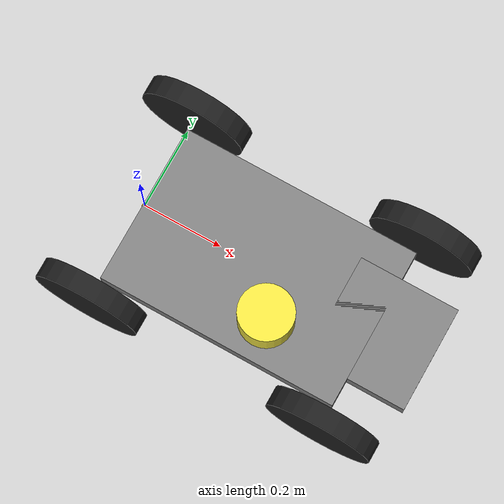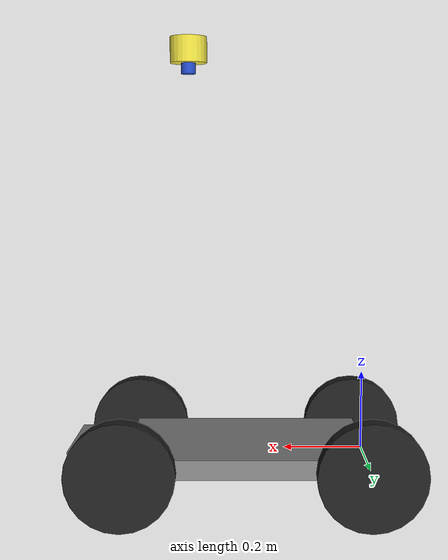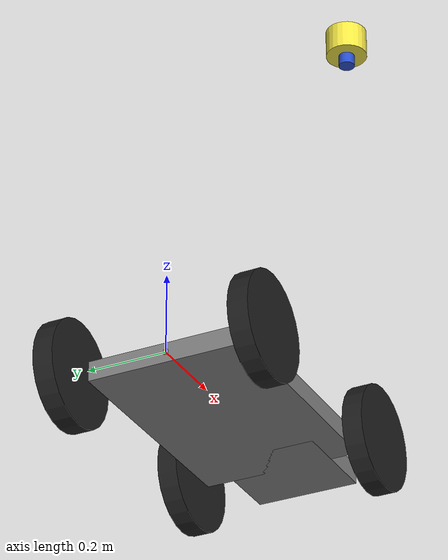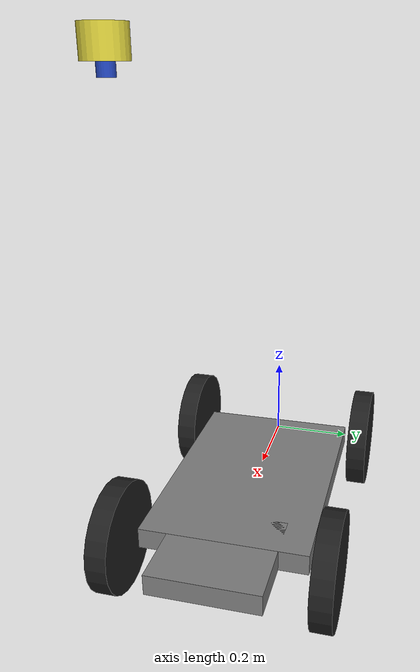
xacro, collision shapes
<?xml version="1.0"?>
<robot name="whill_modelc" xmlns:xacro="http://www.ros.org/wiki/xacro">
  <gazebo>
    <plugin name="gazebo_ros_control" filename="libgazebo_ros_control.so">
      <robotNamespace>/whill_modelc</robotNamespace>
    </plugin>
  </gazebo>

  <!-- Include Base Body -->
  <xacro:include filename="$(find rtw_gazebo)/xacro/whill_modelc/base/base.xacro"/>
  <!-- Include Sensors -->
  <xacro:include filename="$(find rtw_gazebo)/xacro/whill_modelc/sensor/sensor.xacro"/>
</robot>

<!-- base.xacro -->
<robot xmlns:xacro="http://www.ros.org/wiki/xacro" name="whill_modelc" >

    <link name="base_link"/>

    <link name="base_floor">
        <visual>
            <geometry>
                <box size="0.600 0.400 0.050"/>
            </geometry>
            <material name="grey">
                <color rgba="0.5 0.5 0.5 1.0"/>
            </material>
        </visual>
        <collision>
            <geometry>
                <box size="0.600 0.400 0.050"/>
            </geometry>
        </collision>
        <inertial>
            <origin xyz="0 0 0" rpy="0 0 0" />
            <mass value="40" />
            <inertia ixx="1.0"  ixy="0.0"   ixz="0.0"
                                iyy="1.0"   iyz="0.0"
                                            izz="1.0" />
        </inertial>
    </link>

    <joint name="base_body_joint" type="fixed">
        <parent link="base_link" />
        <child link="base_floor" />
        <origin xyz="0.3 0 0.0" rpy="0 0 0"/>
    </joint>

    <link name="footrest_link">
        <collision>
            <geometry>
                <box size="0.250 0.260 0.050"/>
            </geometry>
        </collision>
        <visual>
            <geometry>
                <box size="0.250 0.260 0.050"/>
            </geometry>
            <material name="grey">
                <color rgba="0.5 0.5 0.5 1.0"/>
            </material>
        </visual>
        <inertial>
            <origin xyz="0 0 0" rpy="0 0 0" />
            <mass value="1" />
            <inertia ixx="1.0"  ixy="0.0"   ixz="0.0"
                                iyy="1.0"   iyz="0.0"
                                            izz="1.0" />
        </inertial>
    </link>

    <joint name="footrest_joint" type="fixed">
        <parent link="base_floor" />
        <child link="footrest_link" />
        <origin xyz="0.320 0 0" rpy="0 0 0"/>
    </joint>

    <link name="left_wheel_link">
        <visual>
            <geometry>
                <cylinder length="0.05" radius="0.1325"/>
            </geometry>
            <origin xyz="0 0 0" rpy="0 0 0" />
            <material name="black" />
        </visual>
        <collision>
            <geometry>
                <cylinder length="0.05" radius="0.1325"/>
            </geometry>
        </collision>
        <inertial>
            <origin xyz="0 0 0"/>
            <mass value="0.500"/>
            <inertia ixx="0.0013541667" ixy="0" ixz="0" iyy="0.0013541667" iyz="0" izz="0.0025"/>
        </inertial>
    </link>

    <joint name="leftWheel" type="continuous">
        <parent link="base_floor" />
        <child link="left_wheel_link" />
        <origin xyz="-0.3 0.245 0" rpy="${radians(-90)} 0 0" />
        <axis xyz="0 0 1" />
    </joint>

    <link name="right_wheel_link">
        <collision>
            <origin xyz="0 0 0" rpy="0 0 0" />
            <geometry>
                <cylinder length="0.05" radius="0.1325"/>
            </geometry>
        </collision>
        <visual>
            <origin xyz="0 0 0" rpy="0 0 0" />
            <geometry>
                <cylinder length="0.05" radius="0.1325"/>
            </geometry>
            <material name="black" />
        </visual>
        <inertial>
            <origin xyz="0 0 0"/>
            <mass value="0.500"/>
            <inertia ixx="0.0013541667" ixy="0" ixz="0" iyy="0.0013541667" iyz="0" izz="0.0025"/>
        </inertial>
    </link>

    <joint name="rightWheel" type="continuous">
        <parent link="base_floor" />
        <child link="right_wheel_link" />
        <origin xyz="-0.3 -0.245 0" rpy="${radians(-90)} 0 0" />
        <axis xyz="0 0 1" />
    </joint>

    <link name="frontwheel_left">
        <collision>
            <geometry>
                <cylinder length="0.05" radius="0.1325"/>
            </geometry>
        </collision>
        <visual>
            <geometry>
                <cylinder length="0.05" radius="0.1325"/>
            </geometry>
            <material name="black" />
        </visual>
        <inertial>
            <origin xyz="0 0 0" rpy="0 0 0" />
            <mass value="1.0" />
            <inertia ixx="1.0"  ixy="0.0"   ixz="0.0"
                                iyy="1.0"   iyz="0.0"
                                            izz="1.0" />
        </inertial>
    </link>

    <joint name="frontwheel_left_joint" type="fixed">
        <parent link="base_floor" />
        <child link="frontwheel_left" />
        <origin xyz="0.3 0.245 0" rpy="${radians(-90)} 0 0" />
        <axis xyz="0 0 1" />
    </joint>

    <link name="frontwheel_right">
        <collision>
            <geometry>
                <cylinder length="0.05" radius="0.1325"/>
            </geometry>
        </collision>
        <visual>
            <geometry>
                <cylinder length="0.05" radius="0.1325"/>
            </geometry>
            <material name="black" />
        </visual>
        <inertial>
            <origin xyz="0 0 0" rpy="0 0 0" />
            <mass value="1.0" />
            <inertia ixx="1.0"  ixy="0.0"   ixz="0.0"
                                iyy="1.0"   iyz="0.0"
                                            izz="1.0" />
        </inertial>
    </link>

    <joint name="frontwheel_right_joint" type="fixed">
        <parent link="base_floor" />
        <child link="frontwheel_right"/>
        <origin xyz="0.3 -0.245 0" rpy="${radians(-90)} 0 0" />
        <axis xyz="0 0 -1" />
    </joint>

    <!-- ===============  Transmission =============== -->
    <transmission name="right_wheel_trans">
        <type>transmission_interface/SimpleTransmission</type>
        <joint name="rightWheel">
            <hardwareInterface>hardware_interface/VelocityJointInterface</hardwareInterface>
        </joint>
        <actuator name="right_wheel_motor">
            <hardwareInterface>hardware_interface/VelocityJointInterface</hardwareInterface>
            <mechanicalReduction>30</mechanicalReduction>
        </actuator>
    </transmission>

    <transmission name="left_wheel_trans">
        <type>transmission_interface/SimpleTransmission</type>
        <joint name="leftWheel">
            <hardwareInterface>hardware_interface/VelocityJointInterface</hardwareInterface>
        </joint>
        <actuator name="left_wheel_motor">
            <hardwareInterface>hardware_interface/VelocityJointInterface</hardwareInterface>
            <mechanicalReduction>30</mechanicalReduction>
        </actuator>
    </transmission>

    <!-- For Gazebo -->
    <gazebo reference="base_floor">
        <selfCollide>true</selfCollide>
        <mu1 value="0.05" />
        <mu2 value="0.05" />
    </gazebo>

    <gazebo reference="sensor_arm_link">
        <selfCollide>true</selfCollide>
        <mu1 value="0.05" />
        <mu2 value="0.05" />
    </gazebo>

    <gazebo reference="rearwheel_right">
        <selfCollide>true</selfCollide>
        <mu1 value="1.0" />
        <mu2 value="1.0" />
    </gazebo>

    <gazebo reference="rearwheel_left">
        <selfCollide>true</selfCollide>
        <mu1 value="1.0" />
        <mu2 value="1.0" />
    </gazebo>

    <gazebo reference="frontwheel_right">
        <selfCollide>true</selfCollide>
        <mu1 value="0.0" />
        <mu2 value="0.0" />
    </gazebo>

    <gazebo reference="frontwheel_left">
        <selfCollide>true</selfCollide>
        <mu1 value="0.0" />
        <mu2 value="0.0" />
    </gazebo>

</robot>

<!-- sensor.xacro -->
<robot name="whill_modelc" xmlns:xacro="http://www.ros.org/wiki/xacro">

  <!-- Include sensor macros -->
  <xacro:include filename="$(find rtw_gazebo)/xacro/whill_modelc/sensor/camera/camera.xacro" />
  <xacro:include filename="$(find rtw_gazebo)/xacro/whill_modelc/sensor/gps/gps.xacro" />
  <xacro:include filename="$(find rtw_gazebo)/xacro/whill_modelc/sensor/imu/imu.xacro" />
  <xacro:include filename="$(find rtw_gazebo)/xacro/whill_modelc/sensor/2d_lidar/2d_lidar.xacro" />
  <xacro:include filename="$(find rtw_gazebo)/xacro/whill_modelc/sensor/3d_lidar/3d_lidar.xacro" />

  <!-- Enable Flag -->
  <xacro:arg name="camera_enabled" default="true" />
  <xacro:arg name="gps_enabled" default="true" />
  <xacro:arg name="imu_enabled" default="true" />
  <xacro:arg name="2dlidar_enabled" default="true" />
  <xacro:arg name="3dlidar_enabled" default="true" />

  <!-- ADD SENSORS -->
  <!-- Camera -->
  <xacro:if value="$(arg camera_enabled)">
    <xacro:camera_macro prefix="camera" parent="base_link" xyz="0.48 0.23 0.82"/>
  </xacro:if>
  <!-- GPS -->
  <xacro:if value="$(arg gps_enabled)">
    <xacro:gps_macro prefix="gps" parent="base_link" xyz="0 0 0"/>
  </xacro:if>
  <!-- IMU -->
  <xacro:if value="$(arg imu_enabled)">
    <xacro:imu_macro prefix="imu" parent="base_link" xyz="0.02 0 0.05" rpy="0 0.85521133347 3.14159265359"/>
  </xacro:if>
  <!-- 2D LIDAR -->
  <xacro:if value="$(arg 2dlidar_enabled)">
    <xacro:lidar_2d_macro prefix="lidar" parent="base_link" xyz="0.46 -0.26 1.02"/>
  </xacro:if>
  <!-- 3D LIDAR -->
  <xacro:if value="$(arg 3dlidar_enabled)">
    <xacro:velodyne_vlp16 parent="base_link" xyz="0.46 -0.26 1.02"/>
  </xacro:if>
</robot>

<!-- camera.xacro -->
<robot xmlns:xacro="http://www.ros.org/wiki/xacro">
  <xacro:macro name="camera_macro" params="parent prefix xyz">
    <joint name="${prefix}_joint" type="fixed">
      <parent link="${parent}"/>
      <child  link="${prefix}_link"/>
      <origin xyz="${xyz}" rpy="${radians(-90)} 0 ${radians(-90)}"/>
    </joint>
    <link name="${prefix}_link"/>
    <gazebo reference="${prefix}_link">
      <sensor type="camera" name="${prefix}">
        <update_rate>10.0</update_rate>
        <camera name="${prefix}">
          <pose>0 0 0 0 ${radians(-90)} ${radians(90)}</pose>
          <horizontal_fov>1.3962634</horizontal_fov>
          <image>
            <width>800</width>
            <height>600</height>
            <format>R8G8B8</format>
          </image>
          <clip>
            <near>0.02</near>
            <far>300</far>
          </clip>
          <noise>
            <type>gaussian</type>
            <mean>0.0</mean>
            <stddev>0.007</stddev>
          </noise>
        </camera>
        <plugin name="camera_controller" filename="libgazebo_ros_camera.so">
          <alwaysOn>true</alwaysOn>
          <updateRate>0.0</updateRate>
          <cameraName>${prefix}</cameraName>
          <imageTopicName>image_raw</imageTopicName>
          <cameraInfoTopicName>camera_info</cameraInfoTopicName>
          <frameName>${prefix}_link</frameName>
          <hackBaseline>0.07</hackBaseline>
          <distortionK1>0.0</distortionK1>
          <distortionK2>0.0</distortionK2>
          <distortionK3>0.0</distortionK3>
          <distortionT1>0.0</distortionT1>
          <distortionT2>0.0</distortionT2>
        </plugin>
      </sensor>
    </gazebo>
  </xacro:macro>
</robot>

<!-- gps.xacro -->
<robot xmlns:xacro="http://www.ros.org/wiki/xacro">
  <xacro:macro name="gps_macro" params="parent prefix xyz">
    <joint name="${prefix}_joint" type="fixed">
      <parent link="${parent}"/>
      <child  link="${prefix}_link"/>
      <origin xyz="${xyz}" rpy="0 0 0"/>
    </joint>
    <link name="${prefix}_link">
      <inertial>
        <mass value="0.001" />
        <origin xyz="0 0 0" rpy="0 0 0" />
        <inertia ixx="0.000000017" ixy="0" ixz="0" iyy="0.000000017" iyz="0" izz="0.000000017" />
      </inertial>
      <visual>
        <origin xyz="0 0 0" rpy="0 0 0" />
        <geometry>
          <box size="0.01 0.01 0.01" />
        </geometry>
      </visual>
      <collision>
        <origin xyz="0 0 0" rpy="0 0 0" />
        <geometry>
          <box size="0.01 0.01 0.01" />
        </geometry>
      </collision>
    </link>
    <gazebo>
      <plugin name="novatel_gps_sim" filename="libhector_gazebo_ros_gps.so">
        <alwaysOn>1</alwaysOn>
        <updateRate>10.0</updateRate>
        <bodyName>base_link</bodyName>
        <topicName>fix</topicName>
        <velocityTopicName>fix_velocity</velocityTopicName>
        <drift>0.1 0.1 0.1</drift>
        <gaussianNoise>0.1 0.1 0.1</gaussianNoise>
        <velocityDrift>0 0 0</velocityDrift>
        <velocityGaussianNoise>0.1 0.1 0.1</velocityGaussianNoise>
        <referenceLatitude>21.31</referenceLatitude>
        <referenceLongitude>-157.90</referenceLongitude>
      </plugin>
    </gazebo>
  </xacro:macro>
</robot>

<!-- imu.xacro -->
<robot xmlns:xacro="http://www.ros.org/wiki/xacro">
  <xacro:macro name="imu_macro" params="parent prefix xyz rpy">
    <joint name="imu_joint" type="fixed">
      <axis xyz="0 1 0" />
      <parent link="${parent}"/>
      <child  link="${prefix}_link"/>
      <origin xyz="${xyz}" rpy="${rpy}"/>
    </joint>
    <link name="${prefix}_link"/>
    <gazebo reference="${prefix}_link">
      <gravity>true</gravity>
      <sensor name="imu_sensor" type="imu">
        <always_on>true</always_on>
        <update_rate>100</update_rate>
        <visualize>true</visualize>
        <topic>data</topic>
        <plugin filename="libgazebo_ros_imu_sensor.so" name="imu_plugin">
          <topicName>${prefix}/data</topicName>
          <bodyName>${prefix}_link</bodyName>
          <updateRateHZ>10.0</updateRateHZ>
          <gaussianNoise>0.0</gaussianNoise>
          <xyzOffset>0 0 0</xyzOffset>
          <rpyOffset>0 0 0</rpyOffset>
          <frameName>${prefix}_link</frameName>
        </plugin>
        <pose>0 0 0 0 0 0</pose>
      </sensor>
    </gazebo>
  </xacro:macro>
</robot>

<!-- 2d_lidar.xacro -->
<robot xmlns:xacro="http://www.ros.org/wiki/xacro">
  <xacro:macro name="lidar_2d_macro" params="parent prefix xyz">
    <joint name="${prefix}_joint" type="fixed">
      <parent link="${parent}"/>
      <child  link="${prefix}_link"/>
      <origin xyz="${xyz}" rpy="0 0 0"/>
    </joint>
    <link name="${prefix}_link">
      <visual>
        <origin xyz="0 0 0" rpy="0 0 0" />
        <geometry>
          <cylinder radius="0.02" length="0.06" />
        </geometry>
        <material name="blue" />
      </visual>
      <collision>
        <origin xyz="0 0 0" rpy="0 0 0"/>
        <geometry>
          <cylinder radius="0.02" length="0.06" />
        </geometry>
      </collision>
    </link>
    <gazebo reference="${prefix}_link">
      <material>Gazebo/Blue</material>
      <sensor type="ray" name="${prefix}">
        <pose>0 0 0 0 0 0</pose>
        <visualize>false</visualize>
        <update_rate>10</update_rate>
        <ray>
          <scan>
            <horizontal>
              <samples>400</samples>
              <resolution>1</resolution>
              <min_angle>${radians(-180)}</min_angle>
              <max_angle>${radians( 180)}</max_angle>
            </horizontal>
          </scan>
          <range>
            <min>0.10</min>
            <max>20.0</max>
            <resolution>0.01</resolution>
          </range>
          <noise>
            <type>gaussian</type>
            <mean>0.0</mean>
            <stddev>0.01</stddev>
          </noise>
        </ray>
        <plugin name="gazebo_ros_lidar_controller" filename="libgazebo_ros_laser.so">
          <topicName>/scan</topicName>
          <frameName>velodyne</frameName>
        </plugin>
      </sensor>
    </gazebo>
  </xacro:macro>
</robot>

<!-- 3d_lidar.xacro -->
<robot xmlns:xacro="http://www.ros.org/wiki/xacro">
  <xacro:include filename="$(find velodyne_description)/urdf/VLP-16.urdf.xacro"/>

  <xacro:macro name="velodyne_vlp16" params="parent xyz">
    <xacro:VLP-16 parent="${parent}" name="velodyne"
                  topic="/velodyne_points"
                  hz="10" samples="440">
      <origin xyz="${xyz}" rpy="0 0 0" />
    </xacro:VLP-16>
  </xacro:macro>
</robot>

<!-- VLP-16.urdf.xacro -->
<robot xmlns:xacro="http://www.ros.org/wiki/xacro" name="VLP-16">
  <xacro:property name="M_PI" value="3.1415926535897931" />
  <xacro:macro name="VLP-16" params="*origin is_sim:=true parent:=base_link name:=velodyne tf_prefix:='' topic:=/velodyne_points organize_cloud:=false hz:=10 lasers:=16 samples:=1875 collision_range:=0.3 min_range:=0.0 max_range:=100.0 noise:=0.008 min_angle:=-${M_PI} max_angle:=${M_PI} gpu:=false">

    <joint name="${name}_base_mount_joint" type="fixed">
      <xacro:insert_block name="origin" />
      <parent link="${parent}"/>
      <child link="${name}_base_link"/>
    </joint>

    <link name="${name}_base_link">
      <inertial>
        <mass value="0.83"/>
        <origin xyz="0 0 0.03585"/>
        <inertia ixx="${(0.83 * (3.0*0.0516*0.0516 + 0.0717*0.0717)) / 12.0}" ixy="0" ixz="0"
          iyy="${(0.83 * (3.0*0.0516*0.0516 + 0.0717*0.0717)) / 12.0}" iyz="0"
          izz="${0.5 * 0.83 * (0.0516*0.0516)}"/>
      </inertial>
      <visual>
        <geometry>
          <mesh filename="package://velodyne_description/meshes/VLP16_base_1.dae" />
        </geometry>
      </visual>
      <visual>
        <geometry>
          <mesh filename="package://velodyne_description/meshes/VLP16_base_2.dae" />
        </geometry>
      </visual>
      <collision>
        <origin rpy="0 0 0" xyz="0 0 0.03585"/>
        <geometry>
          <cylinder radius="0.0516" length="0.0717"/>
        </geometry>
      </collision>
    </link>

    <joint name="${name}_base_scan_joint" type="fixed" >
      <origin xyz="0 0 0.0377" rpy="0 0 0" />
      <parent link="${name}_base_link" />
      <child link="${name}"/>
    </joint>

    <link name="${name}">
      <inertial>
        <mass value="0.01"/>
        <origin xyz="0 0 0"/>
        <inertia ixx="1e-7" ixy="0" ixz="0" iyy="1e-7" iyz="0" izz="1e-7"/>
      </inertial>
      <visual>
        <origin xyz="0 0 -0.0377" />
        <geometry>
          <mesh filename="package://velodyne_description/meshes/VLP16_scan.dae" />
        </geometry>
      </visual>
      <collision>
        <geometry>
          <sphere radius="0"/>
        </geometry>
      </collision>
    </link>

    <!-- Gazebo requires the velodyne_gazebo_plugins package -->
    <xacro:if value="${is_sim}">
        <gazebo reference="${name}">
            <xacro:if value="${gpu}">
                <sensor type="gpu_ray" name="${name}-VLP16">
                <pose>0 0 0 0 0 0</pose>
                <visualize>false</visualize>
                <update_rate>${hz}</update_rate>
                <ray>
                    <scan>
                    <horizontal>
                        <samples>${samples}</samples>
                        <resolution>1</resolution>
                        <min_angle>${min_angle}</min_angle>
                        <max_angle>${max_angle}</max_angle>
                    </horizontal>
                    <vertical>
                        <samples>${lasers}</samples>
                        <resolution>1</resolution>
                        <min_angle>-${15.0*M_PI/180.0}</min_angle>
                        <max_angle> ${15.0*M_PI/180.0}</max_angle>
                    </vertical>
                    </scan>
                    <range>
                    <min>${collision_range}</min>
                    <max>${max_range+1}</max>
                    <resolution>0.001</resolution>
                    </range>
                    <noise>
                    <type>gaussian</type>
                    <mean>0.0</mean>
                    <stddev>0.0</stddev>
                    </noise>
                </ray>
                <plugin name="gazebo_ros_laser_controller" filename="libgazebo_ros_velodyne_laser.so">
                    <ros>
                    <namespace>/${name}</namespace>
                    <remapping>~/out:=${topic}</remapping>
                    </ros>
                    <tf_prefix>${tf_prefix}</tf_prefix>
                    <frame_name>${name}</frame_name>
                    <organize_cloud>${organize_cloud}</organize_cloud>
                    <min_range>${min_range}</min_range>
                    <max_range>${max_range}</max_range>
                    <gaussian_noise>${noise}</gaussian_noise>
                </plugin>
                </sensor>
            </xacro:if>
            <xacro:unless value="${gpu}">
                <sensor type="ray" name="${name}-VLP16">
                <pose>0 0 0 0 0 0</pose>
                <visualize>false</visualize>
                <update_rate>${hz}</update_rate>
                <ray>
                    <scan>
                    <horizontal>
                        <samples>${samples}</samples>
                        <resolution>1</resolution>
                        <min_angle>${min_angle}</min_angle>
                        <max_angle>${max_angle}</max_angle>
                    </horizontal>
                    <vertical>
                        <samples>${lasers}</samples>
                        <resolution>1</resolution>
                        <min_angle>-${15.0*M_PI/180.0}</min_angle>
                        <max_angle> ${15.0*M_PI/180.0}</max_angle>
                    </vertical>
                    </scan>
                    <range>
                    <min>${collision_range}</min>
                    <max>${max_range+1}</max>
                    <resolution>0.001</resolution>
                    </range>
                    <noise>
                    <type>gaussian</type>
                    <mean>0.0</mean>
                    <stddev>0.0</stddev>
                    </noise>
                </ray>
                <plugin name="gazebo_ros_laser_controller" filename="libgazebo_ros_velodyne_laser.so">
                    <ros>
                    <namespace>/${name}</namespace>
                    <remapping>~/out:=${topic}</remapping>
                    </ros>
                    <tf_prefix>${tf_prefix}</tf_prefix>
                    <frame_name>${name}</frame_name>
                    <organize_cloud>${organize_cloud}</organize_cloud>
                    <min_range>${min_range}</min_range>
                    <max_range>${max_range}</max_range>
                    <gaussian_noise>${noise}</gaussian_noise>
                </plugin>
                </sensor>
            </xacro:unless>
        </gazebo>
    </xacro:if>

  </xacro:macro>
</robot>
